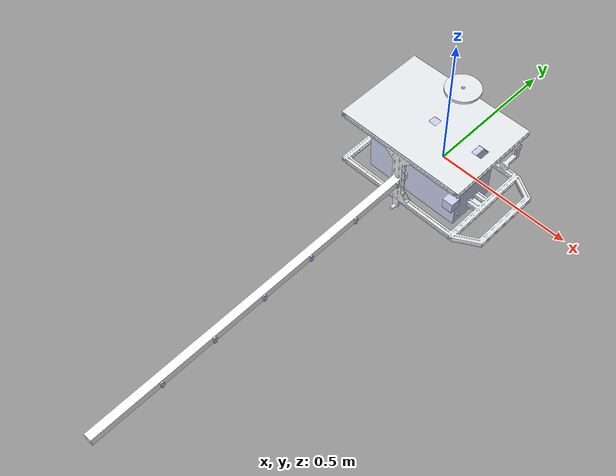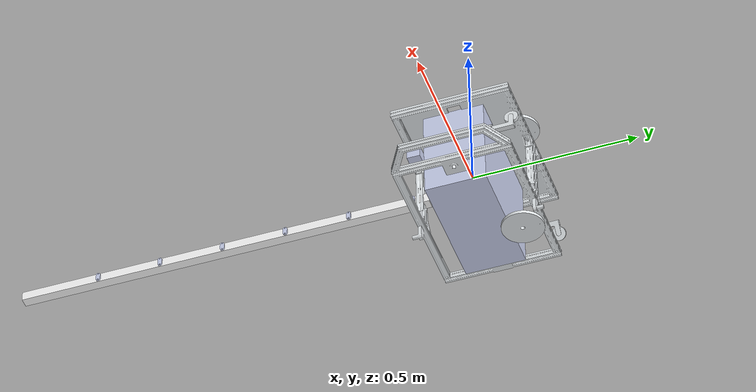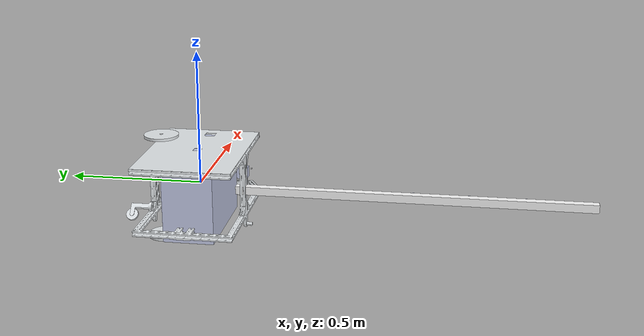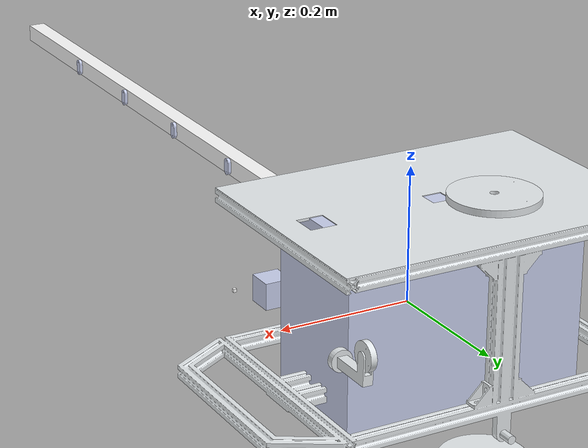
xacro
<?xml version='1.0'?>

<robot name="GazeboV1" xmlns:xacro="http://www.ros.org/wiki/xacro" >

  <xacro:include filename="$(find GazeboV0)/urdf/UVbot.gazebo" />
  <xacro:include filename="$(find GazeboV0)/urdf/macros.xacro" />
  <xacro:include filename="$(find GazeboV0)/urdf/materials.xacro" />
  <link
    name="Chassis">
    <inertial>
      <origin
        xyz="-0.0349291227412865 -0.0495089113491768 -0.00170081282624067"
        rpy="0 0 0" />
      <mass
        value="4.66826330321552" />
      <inertia
        ixx="0.130787692266524"
        ixy="-0.0104155393687218"
        ixz="-1.81743796078425E-07"
        iyy="0.193986448043217"
        iyz="-6.31947033467866E-06"
        izz="0.181657790771304" />
    </inertial>
    <visual>
      <origin
        xyz="0 0 0"
        rpy="0 0 0" />
      <geometry>
        <mesh
          filename="package://GazeboV0/meshes/Chassis.STL" />
      </geometry>
      <material
        name="">
        <color
          rgba="0.898039215686275 0.917647058823529 0.929411764705882 1" />
      </material>
    </visual>
    <collision>
      <origin
        xyz="0 0 0"
        rpy="0 0 0" />
      <geometry>
        <mesh
          filename="package://GazeboV0/meshes/Chassis.STL" />
      </geometry>
    </collision>
  </link>
  <link
    name="RightWheel">
    <inertial>
      <origin
        xyz="1.66533453693773E-16 -2.08166817117217E-17 0.00510000000000357"
        rpy="0 0 0" />
      <mass
        value="0.338614058747035" />
      <inertia
        ixx="0.000347581051317554"
        ixy="-7.2847914388561E-20"
        ixz="9.68090147789188E-18"
        iyy="0.000347581051317554"
        iyz="4.20426026957168E-19"
        izz="0.000689518301963574" />
    </inertial>
    <visual>
      <origin
        xyz="0 0 0"
        rpy="0 0 0" />
      <geometry>
        <mesh
          filename="package://GazeboV0/meshes/RightWheel.STL" />
      </geometry>
      <material
        name="">
        <color
          rgba="0.898039215686275 0.917647058823529 0.929411764705882 1" />
      </material>
    </visual>
    <collision>
      <origin
        xyz="0 0 0"
        rpy="0 0 0" />
      <geometry>
        <mesh
          filename="package://GazeboV0/meshes/RightWheel.STL" />
      </geometry>
    </collision>
  </link>
  <joint
    name="RightRevolute"
    type="continuous">
    <origin
      xyz="-0.0464879186474883 0.13117170540085 -0.191028392468994"
      rpy="3.14159265358979 0 1.5707963267949" />
    <parent
      link="Chassis" />
    <child
      link="RightWheel" />
    <axis
      xyz="0 0 1" />
    <dynamics
      damping="0"
      friction="0" />
  </joint>
  <link
    name="LeftWheel">
    <inertial>
      <origin
        xyz="-8.32667268468867E-17 0 -0.00510000000000457"
        rpy="0 0 0" />
      <mass
        value="0.338614058747035" />
      <inertia
        ixx="0.000347581051317554"
        ixy="0"
        ixz="5.18653052206189E-18"
        iyy="0.000347581051317554"
        iyz="2.094272599277E-18"
        izz="0.000689518301963574" />
    </inertial>
    <visual>
      <origin
        xyz="0 0 0"
        rpy="0 0 0" />
      <geometry>
        <mesh
          filename="package://GazeboV0/meshes/LeftWheel.STL" />
      </geometry>
      <material
        name="">
        <color
          rgba="0.898039215686275 0.917647058823529 0.929411764705882 1" />
      </material>
    </visual>
    <collision>
      <origin
        xyz="0 0 0"
        rpy="0 0 0" />
      <geometry>
        <mesh
          filename="package://GazeboV0/meshes/LeftWheel.STL" />
      </geometry>
    </collision>
  </link>
  <joint
    name="LeftRevolute"
    type="continuous">
    <origin
      xyz="-0.0464879186474897 0.131171705400839 0.188167736746003"
      rpy="-3.14159265358976 0 0.415802035717092" />
    <parent
      link="Chassis" />
    <child
      link="LeftWheel" />
    <axis
      xyz="0 0 1" />
    <dynamics
      damping="0"
      friction="0" />
  </joint>
  <link
    name="FrontCastor">
    <inertial>
      <origin
        xyz="0.00303144893180393 0.0345627416364439 -2.77555756156289E-17"
        rpy="0 0 0" />
      <mass
        value="0.0671525104446696" />
      <inertia
        ixx="4.49259698602968E-05"
        ixy="-6.70501812216236E-06"
        ixz="5.74487078803631E-21"
        iyy="9.6191398567932E-06"
        iyz="1.64392041830321E-20"
        izz="4.97992078191438E-05" />
    </inertial>
    <visual>
      <origin
        xyz="0 0 0"
        rpy="0 0 0" />
      <geometry>
        <mesh
          filename="package://GazeboV0/meshes/FrontCastor.STL" />
      </geometry>
      <material
        name="">
        <color
          rgba="0.898039215686275 0.917647058823529 0.929411764705882 1" />
      </material>
    </visual>
    <collision>
      <origin
        xyz="0 0 0"
        rpy="0 0 0" />
      <geometry>
        <mesh
          filename="package://GazeboV0/meshes/FrontCastor.STL" />
      </geometry>
    </collision>
  </link>
  <joint
    name="FrontCastorRevolute"
    type="continuous">
    <origin
      xyz="0.17263668098028 0.106171705400847 -0.00173226325399095"
      rpy="3.14159265358979 -1.54598030035848 3.14159265358979" />
    <parent
      link="Chassis" />
    <child
      link="FrontCastor" />
    <axis
      xyz="0 1 0" />
    <dynamics
      damping="0"
      friction="0" />
  </joint>
  <link
    name="FrontCastorWheel">
    <inertial>
      <origin
        xyz="-1.38777878078145E-17 0 -6.38378239159465E-16"
        rpy="0 0 0" />
      <mass
        value="0.0317645176567402" />
      <inertia
        ixx="3.91504603938205E-06"
        ixy="6.35274710440725E-22"
        ixz="4.69724685629155E-21"
        iyy="3.91504603938205E-06"
        iyz="-3.89769041069977E-21"
        izz="7.40108172021949E-06" />
    </inertial>
    <visual>
      <origin
        xyz="0 0 0"
        rpy="0 0 0" />
      <geometry>
        <mesh
          filename="package://GazeboV0/meshes/FrontCastorWheel.STL" />
      </geometry>
      <material
        name="">
        <color
          rgba="0.898039215686275 0.917647058823529 0.929411764705882 1" />
      </material>
    </visual>
    <collision>
      <origin
        xyz="0 0 0"
        rpy="0 0 0" />
      <geometry>
        <mesh
          filename="package://GazeboV0/meshes/FrontCastorWheel.STL" />
      </geometry>
    </collision>
  </link>
  <joint
    name="FrontCastorWheelRevolute"
    type="continuous">
    <origin
      xyz="0.0320000000000025 0.0674999999999988 0"
      rpy="0 0 -2.72865613261179" />
    <parent
      link="FrontCastor" />
    <child
      link="FrontCastorWheel" />
    <axis
      xyz="0 0 1" />
    <dynamics
      damping="0"
      friction="0" />
  </joint>
  <link
    name="RearCastor">
    <inertial>
      <origin
        xyz="0.00303144893180135 0.0345627416364439 2.77555756156289E-17"
        rpy="0 0 0" />
      <mass
        value="0.0671525104446695" />
      <inertia
        ixx="4.49259698602978E-05"
        ixy="-6.70501812215977E-06"
        ixz="2.83273439653557E-21"
        iyy="9.61913985679222E-06"
        iyz="-7.18459139052423E-21"
        izz="4.97992078191438E-05" />
    </inertial>
    <visual>
      <origin
        xyz="0 0 0"
        rpy="0 0 0" />
      <geometry>
        <mesh
          filename="package://GazeboV0/meshes/RearCastor.STL" />
      </geometry>
      <material
        name="">
        <color
          rgba="0.898039215686275 0.917647058823529 0.929411764705882 1" />
      </material>
    </visual>
    <collision>
      <origin
        xyz="0 0 0"
        rpy="0 0 0" />
      <geometry>
        <mesh
          filename="package://GazeboV0/meshes/RearCastor.STL" />
      </geometry>
    </collision>
  </link>
  <joint
    name="RearCastorRevolute"
    type="continuous">
    <origin
      xyz="-0.26561 0.10617 -0.0017323"
      rpy="3.1416 0.86322 -3.1416" />
    <parent
      link="Chassis" />
    <child
      link="RearCastor" />
    <axis
      xyz="0 1 0" />
    <dynamics
      damping="0"
      friction="0" />
  </joint>
  <link
    name="RearCastorWheel">
    <inertial>
      <origin
        xyz="-2.77555756156289E-17 2.77555756156289E-17 -8.32667268468867E-17"
        rpy="0 0 0" />
      <mass
        value="0.0317645176567403" />
      <inertia
        ixx="3.91504603938205E-06"
        ixy="-1.05879118406788E-22"
        ixz="2.19563704948836E-21"
        iyy="3.91504603938205E-06"
        iyz="4.98357577870837E-22"
        izz="7.4010817202195E-06" />
    </inertial>
    <visual>
      <origin
        xyz="0 0 0"
        rpy="0 0 0" />
      <geometry>
        <mesh
          filename="package://GazeboV0/meshes/RearCastorWheel.STL" />
      </geometry>
      <material
        name="">
        <color
          rgba="0.898039215686275 0.917647058823529 0.929411764705882 1" />
      </material>
    </visual>
    <collision>
      <origin
        xyz="0 0 0"
        rpy="0 0 0" />
      <geometry>
        <mesh
          filename="package://GazeboV0/meshes/RearCastorWheel.STL" />
      </geometry>
    </collision>
  </link>
  <joint
    name="RearCastorWheelRevolute"
    type="continuous">
    <origin
      xyz="0.032 0.0675 0"
      rpy="0 0 1.2997" />
    <parent
      link="RearCastor" />
    <child
      link="RearCastorWheel" />
    <axis
      xyz="0 0 1" />
    <dynamics
      damping="0"
      friction="0" />
  </joint>
  <link
    name="Battery">
    <inertial>
      <origin
        xyz="6.5226E-16 0.0925 -2.6021E-17"
        rpy="0 0 0" />
      <mass
        value="17.512" />
      <inertia
        ixx="0.17268"
        ixy="1.1068E-15"
        ixz="6.5533E-16"
        iyy="0.33347"
        iyz="2.7779E-17"
        izz="0.26068" />
    </inertial>
    <visual>
      <origin
        xyz="0 0 0"
        rpy="0 0 0" />
      <geometry>
        <mesh
          filename="package://GazeboV0/meshes/Battery.STL" />
      </geometry>
      <material
        name="">
        <color
          rgba="0.79216 0.81961 0.93333 1" />
      </material>
    </visual>
    <collision>
      <origin
        xyz="0 0 0"
        rpy="0 0 0" />
      <geometry>
        <mesh
          filename="package://GazeboV0/meshes/Battery.STL" />
      </geometry>
    </collision>
  </link>
  <joint
    name="Fixed_Chassis_Battery"
    type="fixed">
    <origin
      xyz="-0.046488 -0.10283 -0.0014323"
      rpy="0 0 0" />
    <parent
      link="Chassis" />
    <child
      link="Battery" />
    <axis
      xyz="0 0 0" />
  </joint>

  <link
    name="LiDAR">
    <inertial>
      <origin
        xyz="2.7756E-17 0.0204 1.0842E-17"
        rpy="0 0 0" />
      <mass
        value="0.2295" />
      <inertia
        ixx="0.00013941"
        ixy="-1.1081E-20"
        ixz="-3.8687E-21"
        iyy="0.00021516"
        iyz="8.6691E-21"
        izz="0.00013941" />
    </inertial>
    <visual>
      <origin
        xyz="0 0 0"
        rpy="0 0 0" />
      <geometry>
        <mesh
          filename="package://GazeboV0/meshes/LiDAR.STL" />
      </geometry>
      <material
        name="">
        <color
          rgba="0.79216 0.81961 0.93333 1" />
      </material>
    </visual>
    <collision>
      <origin
        xyz="0 0 0"
        rpy="0 0 0" />
      <geometry>
        <mesh
          filename="package://GazeboV0/meshes/LiDAR.STL" />
      </geometry>
    </collision>
  </link>
  <joint
    name="Fixed_Battery_LiDAR"
    type="fixed">
    <origin
      xyz="0.14351 -0.10903 -0.0017323"
      rpy="3.1416 0 0" />
    <parent
      link="Chassis" />
    <child
      link="LiDAR" />
    <axis
      xyz="0 0 0" />
  </joint>

  <link
    name="WoodRod"> <!--comment-->
    <inertial>
      <origin
        xyz="1.0842E-18 -5.1576E-06 0.25004"
        rpy="0 0 0" />
      <mass
        value="0.70171" />
      <inertia
        ixx="0.098881"
        ixy="-1.9823E-21"
        ixz="-8.8385E-20"
        iyy="0.098881"
        iyz="-3.6206E-07"
        izz="0.00010523" />
    </inertial>
    <visual>
      <origin
        xyz="0 0 0"
        rpy="0 0 0" />
      <geometry>
        <mesh
          filename="package://GazeboV0/meshes/WoodRod.STL" />
      </geometry>
      <material
        name="">
        <color
          rgba="1 1 1 1" />
      </material>
    </visual>
    <collision>
      <origin
        xyz="0 0 0"
        rpy="0 0 0" />
      <geometry>
        <mesh
          filename="package://GazeboV0/meshes/WoodRod.STL" />
      </geometry>
    </collision>
  </link>

  <joint    name="Fixed_Chassis_WoodRod"
    type="fixed">
    <origin
      xyz="-0.046487918647492 -0.14582829459916 -0.00173226325399934"
      rpy="1.5707963267949 -4.71 0" />
    <parent      link="Chassis" />
    <child
      link="WoodRod" />
    <axis
      xyz="0 0 0" />
  </joint>
  <link
    name="TBS1">
    <inertial>
      <origin
        xyz="-6.50521303491303E-19 -5.55111512312578E-17 0.00275"
        rpy="0 0 0" />
      <mass
        value="0.00173867551882195" />
      <inertia
        ixx="2.81242393072002E-08"
        ixy="2.25608262828661E-24"
        ixz="-5.41969876622703E-24"
        iyy="9.57958648484737E-08"
        iyz="4.20513624735304E-26"
        izz="1.1515428174828E-07" />
    </inertial>
    <visual>
      <origin
        xyz="0 0 0"
        rpy="0 0 0" />
      <geometry>
        <mesh
          filename="package://GazeboV0/meshes/TBS1.STL" />
      </geometry>
      <material
        name="">
        <color
          rgba="0.792156862745098 0.819607843137255 0.933333333333333 1" />
      </material>
    </visual>
    <collision>
      <origin
        xyz="0 0 0"
        rpy="0 0 0" />
      <geometry>
        <mesh
          filename="package://GazeboV0/meshes/TBS1.STL" />
      </geometry>
    </collision>
  </link>
  <joint
    name="Fixed_WoodRod_TBS1"
    type="fixed">
    <origin
      xyz="0 0.0205 1.05"
      rpy="1.5708 0 0" />
    <parent
      link="WoodRod" />
    <child
      link="TBS1" />
    <axis
      xyz="0 0 0" />
  </joint>

  <link
    name="TBS2">
    <inertial>
      <origin
        xyz="-8.89045781438114E-18 -1.11022302462516E-16 0.00275"
        rpy="0 0 0" />
      <mass
        value="0.00173867551882196" />
      <inertia
        ixx="2.81242393072003E-08"
        ixy="7.56188135213521E-23"
        ixz="-4.46736553603762E-24"
        iyy="9.5795864848474E-08"
        iyz="-6.47770446955559E-25"
        izz="1.1515428174828E-07" />
    </inertial>
    <visual>
      <origin
        xyz="0 0 0"
        rpy="0 0 0" />
      <geometry>
        <mesh
          filename="package://GazeboV0/meshes/TBS2.STL" />
      </geometry>
      <material
        name="">
        <color
          rgba="0.792156862745098 0.819607843137255 0.933333333333333 1" />
      </material>
    </visual>
    <collision>
      <origin
        xyz="0 0 0"
        rpy="0 0 0" />
      <geometry>
        <mesh
          filename="package://GazeboV0/meshes/TBS2.STL" />
      </geometry>

  <!-- Hokuyo Laser -->
  <link name="hokuyo">
    <collision>
      <origin xyz="0 0 0" rpy="0 0 0"/>
      <geometry>
    <box size="0.1 0.1 0.1"/>
      </geometry>
    </collision>

    <visual>
      <origin xyz="0 0 0" rpy="0 0 0"/>
      <geometry>
        <mesh filename="package://mybot_description/meshes/hokuyo.dae"/>
      </geometry>
    </visual>

    <inertial>
      <mass value="1e-5" />
      <origin xyz="0 0 0" rpy="0 0 0"/>
      <inertia ixx="1e-6" ixy="0" ixz="0" iyy="1e-6" iyz="0" izz="1e-6" />
    </inertial>
  </link>
    </collision>
  </link>

  <joint
    name="Fixed_WoodRod_TBS2"
    type="fixed">
    <origin
      xyz="0 0.0205 0.85"
      rpy="1.5707963267949 0 0" />
    <parent
      link="WoodRod" />
    <child
      link="TBS2" />
    <axis
      xyz="0 0 0" />
  </joint>
  <link
    name="TBS3">
    <inertial>
      <origin
        xyz="-4.33680868994202E-19 0 0.00275"
        rpy="0 0 0" />
      <mass
        value="0.00173867551882195" />
      <inertia
        ixx="2.81242393072002E-08"
        ixy="1.48908023238314E-22"
        ixz="-5.43212147097724E-24"
        iyy="9.57958648484736E-08"
        iyz="-6.47770446955484E-25"
        izz="1.1515428174828E-07" />
    </inertial>
    <visual>
      <origin
        xyz="0 0 0"
        rpy="0 0 0" />
      <geometry>
        <mesh
          filename="package://GazeboV0/meshes/TBS3.STL" />
      </geometry>
      <material
        name="">
        <color
          rgba="0.792156862745098 0.819607843137255 0.933333333333333 1" />
      </material>
    </visual>
    <collision>
      <origin
        xyz="0 0 0"
        rpy="0 0 0" />
      <geometry>
        <mesh
          filename="package://GazeboV0/meshes/TBS3.STL" />
      </geometry>
    </collision>
  </link>
  <joint
    name="Fixed_WoodRod_TBS3"
    type="fixed">
    <origin
      xyz="0 0.0205 0.65"
      rpy="1.5707963267949 0 0" />
    <parent
      link="WoodRod" />
    <child
      link="TBS3" />
    <axis
      xyz="0 0 0" />
  </joint>
  <link
    name="TBS4">
    <inertial>
      <origin
        xyz="-6.50521303491303E-18 0 0.00275"
        rpy="0 0 0" />
      <mass
        value="0.00173867551882196" />
      <inertia
        ixx="2.81242393072003E-08"
        ixy="-8.25997223265049E-23"
        ixz="3.64947454950446E-24"
        iyy="9.57958648484738E-08"
        iyz="3.50530261744963E-25"
        izz="1.1515428174828E-07" />
    </inertial>
    <visual>
      <origin
        xyz="0 0 0"
        rpy="0 0 0" />
      <geometry>
        <mesh
          filename="package://GazeboV0/meshes/TBS4.STL" />
      </geometry>
      <material
        name="">
        <color
          rgba="0.792156862745098 0.819607843137255 0.933333333333333 1" />
      </material>
    </visual>
    <collision>
      <origin
        xyz="0 0 0"
        rpy="0 0 0" />
      <geometry>
        <mesh
          filename="package://GazeboV0/meshes/TBS4.STL" />
      </geometry>
    </collision>
  </link>
  <joint
    name="Fixed_WoodRod_TBS4"
    type="fixed">
    <origin
      xyz="0 0.015 0.45"
      rpy="-1.5707963267949 0 0" />
    <parent
      link="WoodRod" />
    <child
      link="TBS4" />
    <axis
      xyz="0 0 0" />
  </joint>
  <link
    name="TBS5">
    <inertial>
      <origin
        xyz="-1.45283091113058E-17 2.22044604925031E-16 0.00275"
        rpy="0 0 0" />
      <mass
        value="0.00173867551882196" />
      <inertia
        ixx="2.81242393072001E-08"
        ixy="1.71994343029309E-22"
        ixz="4.25526549978333E-24"
        iyy="9.57958648484738E-08"
        iyz="6.27650514569657E-26"
        izz="1.1515428174828E-07" />
    </inertial>
    <visual>
      <origin
        xyz="0 0 0"
        rpy="0 0 0" />
      <geometry>
        <mesh
          filename="package://GazeboV0/meshes/TBS5.STL" />
      </geometry>
      <material
        name="">
        <color
          rgba="0.792156862745098 0.819607843137255 0.933333333333333 1" />
      </material>
    </visual>
    <collision>
      <origin
        xyz="0 0 0"
        rpy="0 0 0" />
      <geometry>
        <mesh
          filename="package://GazeboV0/meshes/TBS5.STL" />
      </geometry>
    </collision>
  </link>
  <joint
    name="Fixed_WoodRod_TBS5"
    type="fixed">
    <origin
      xyz="0 0.015 0.25"
      rpy="-1.5707963267949 0 0" />
    <parent
      link="WoodRod" />
    <child
      link="TBS5" />
    <axis
      xyz="0 0 0" />
  </joint>
  <link
    name="TBS6">
    <inertial>
      <origin
        xyz="1.0842021724855E-18 0 0.00275"
        rpy="0 0 0" />
      <mass
        value="0.00173867551882195" />
      <inertia
        ixx="2.81242393072E-08"
        ixy="1.13647096521833E-23"
        ixz="3.18913722950877E-24"
        iyy="9.57958648484735E-08"
        iyz="7.14489731268272E-25"
        izz="1.15154281748279E-07" />
    </inertial>
    <visual>
      <origin
        xyz="0 0 0"
        rpy="0 0 0" />
      <geometry>
        <mesh
          filename="package://GazeboV0/meshes/TBS6.STL" />
      </geometry>
      <material
        name="">
        <color
          rgba="0.792156862745098 0.819607843137255 0.933333333333333 1" />
      </material>
    </visual>
    <collision>
      <origin
        xyz="0 0 0"
        rpy="0 0 0" />
      <geometry>
        <mesh
          filename="package://GazeboV0/meshes/TBS6.STL" />
      </geometry>
    </collision>
  </link>
  <joint
    name="Fixed_WoodRod_TBS6"
    type="fixed">
    <origin
      xyz="0 0.015 0.05"
      rpy="-1.5707963267949 0 0" />
    <parent
      link="WoodRod" />
    <child
      link="TBS6" />
    <axis
      xyz="0 0 0" />
  </joint>
  <link
    name="Camera">
    <inertial>
      <origin
        xyz="0 0 0"
        rpy="0 0 0" />
      <mass
        value="0" />
      <inertia
        ixx="0"
        ixy="0"
        ixz="0"
        iyy="0"
        iyz="0"
        izz="0" />
    </inertial>
    <visual>
      <origin
        xyz="0 0 0"
        rpy="0 0 0" />
      <geometry>
        <mesh
          filename="package://GazeboV0/meshes/Camera.STL" />
      </geometry>
      <material
        name="">
        <color
          rgba="1 1 1 1" />
      </material>
    </visual>
    <collision>
      <origin
        xyz="0 0 0"
        rpy="0 0 0" />
      <geometry>
        <mesh
          filename="package://GazeboV0/meshes/Camera.STL" />
      </geometry>
    </collision>
  </link>
  <joint
    name="Fixed_Chassis_Camera"
    type="fixed">
    <origin
      xyz="0.190512081352507 -0.152328294599157 -0.00423226325400071"
      rpy="1.5707963267949 0 0" />
    <parent
      link="Chassis" />
    <child
      link="Camera" />
    <axis
      xyz="0 0 0" />
  </joint>

</robot>
